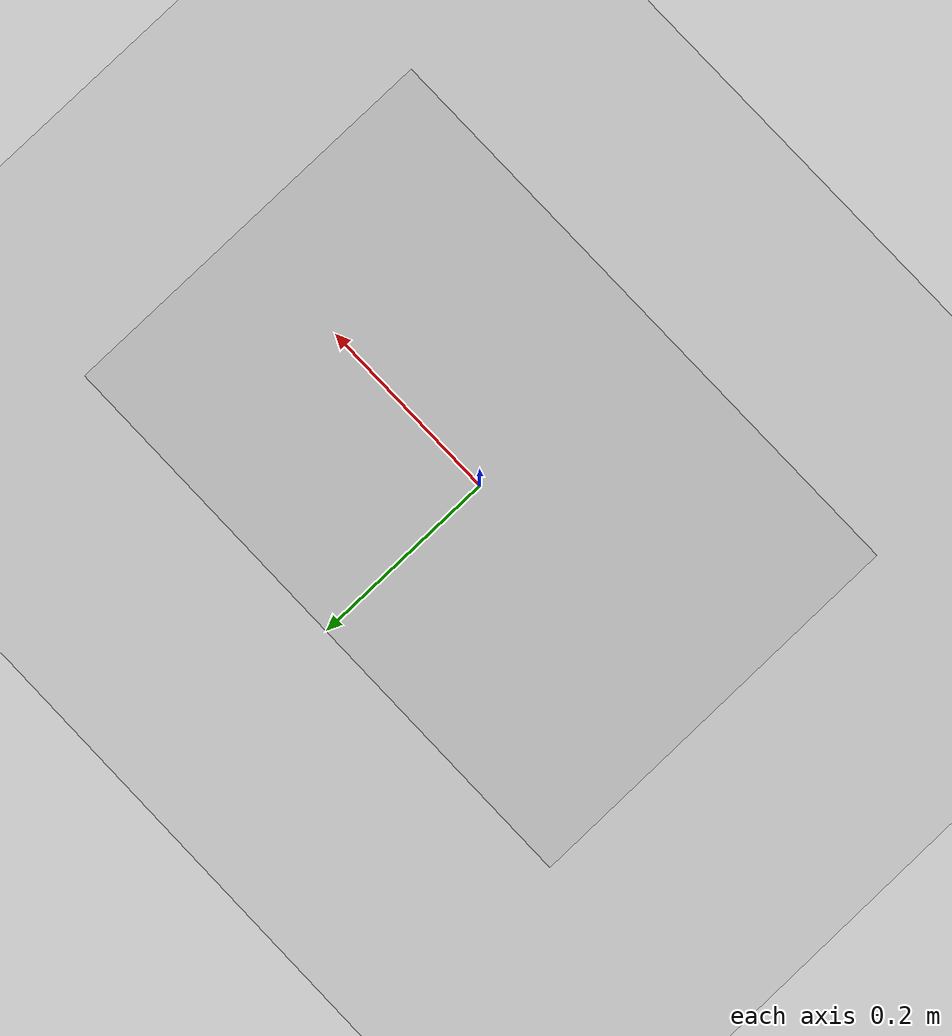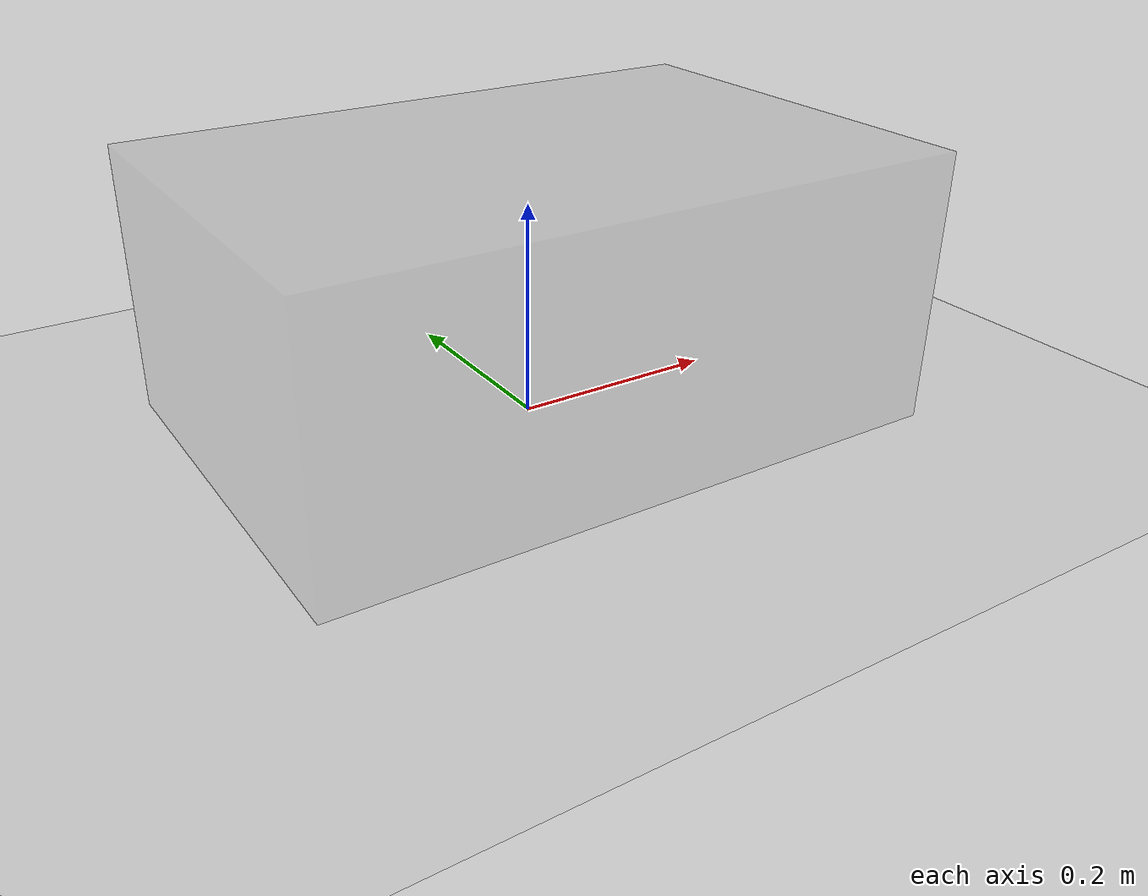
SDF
<?xml version="1.0" ?>
<sdf version="1.6">
  <world name="extrinsic_calibration">
    <!-- A global light source -->
    <scene>
      <ambient>0.95 0.95 0.95 1</ambient>
      <background>0.3 0.3 0.3 1</background>
      <shadows>true</shadows>
    </scene>
    <include>
      <uri>model://sun</uri>
    </include>

    <physics type="ode">
      <real_time_update_rate>100.0</real_time_update_rate>
      <max_step_size>0.01</max_step_size>
      <real_time_factor>1</real_time_factor>
      <ode>
        <solver>
          <type>quick</type>
          <iters>150</iters>
          <precon_iters>0</precon_iters>
          <sor>1.400000</sor>
          <use_dynamic_moi_rescaling>1</use_dynamic_moi_rescaling>
        </solver>
        <constraints>
          <cfm>0.00001</cfm>
          <erp>0.2</erp>
          <contact_max_correcting_vel>2000.000000</contact_max_correcting_vel>
          <contact_surface_layer>0.01000</contact_surface_layer>
        </constraints>
      </ode>
    </physics>

    <include>
      <uri>model://ground_plane</uri>
    </include>

    <model name="robot">
      <static>false</static>

      <!-- root link, on the ground just below the model origin -->
      <link name="base_link">
        <pose>0 0 0 0 0 0 </pose>
        <inertial>
          <mass>1</mass>
          <inertia>
            <ixx>0.1</ixx>
            <ixy>0.1</ixy>
            <ixz>0.1</ixz>
            <iyy>0.1</iyy>
            <iyz>0.1</iyz>
            <izz>0.1</izz>
          </inertia>
        </inertial>
        <visual name='dummy_visual'>
          <geometry>
            <box>
              <size>0.6 0.4 0.5</size>
            </box>
          </geometry>
          <transparency>0.9</transparency>
          <material>
            <diffuse>0.5 0.5 0.5 1</diffuse>
            <ambient>0 0 0 1</ambient>
            <specular>1 1 1 1</specular>
            <emissive>0 0 0.5 1</emissive>
          </material>
        </visual>
        <collision name='collision'>
          <pose>0 0 0 0 0 0</pose>
          <geometry>
              <box>
                <size>0.5 0.5 0.5</size>
              </box>
          </geometry>
        </collision>
      </link>

      <plugin name="object_controller" filename="libgazebo_ros_planar_move.so">
        <commandTopic>cmd_vel</commandTopic>
        <odometryTopic>odom</odometryTopic>
        <odometryFrame>odom</odometryFrame>
        <odometryRate>20.0</odometryRate>
        <robot_base_frame>base_link</robot_base_frame>
      </plugin>
    </model>

  </world>
</sdf>
